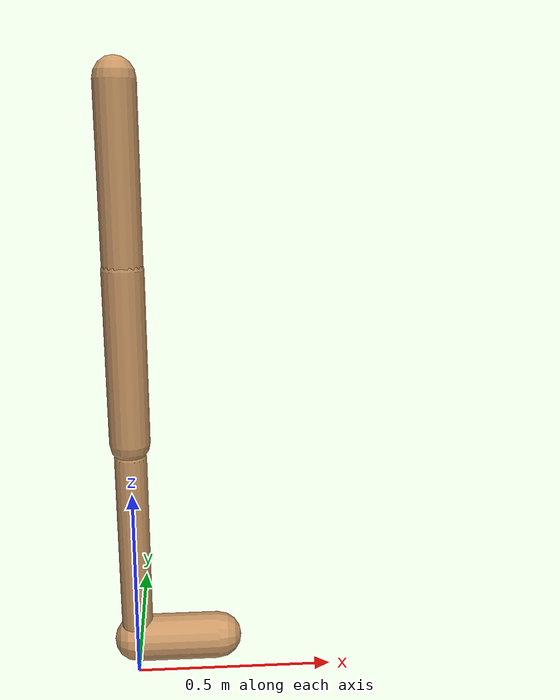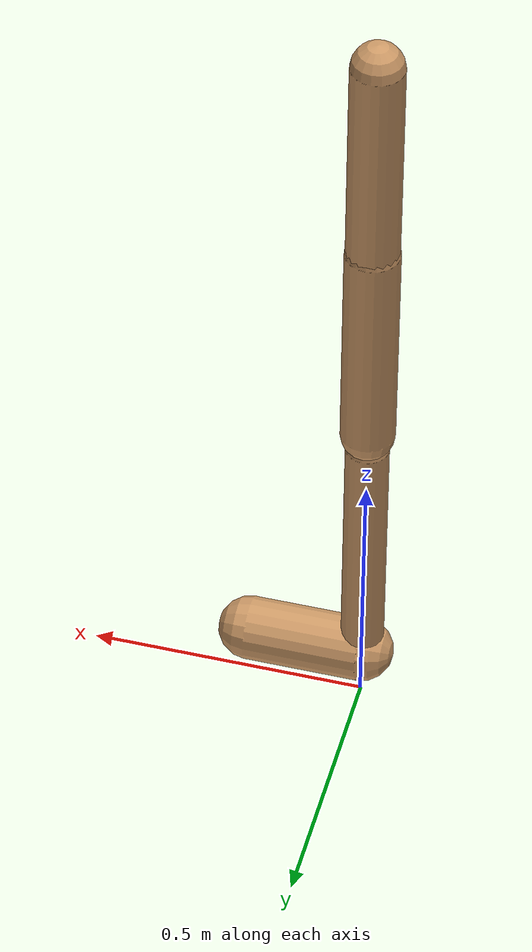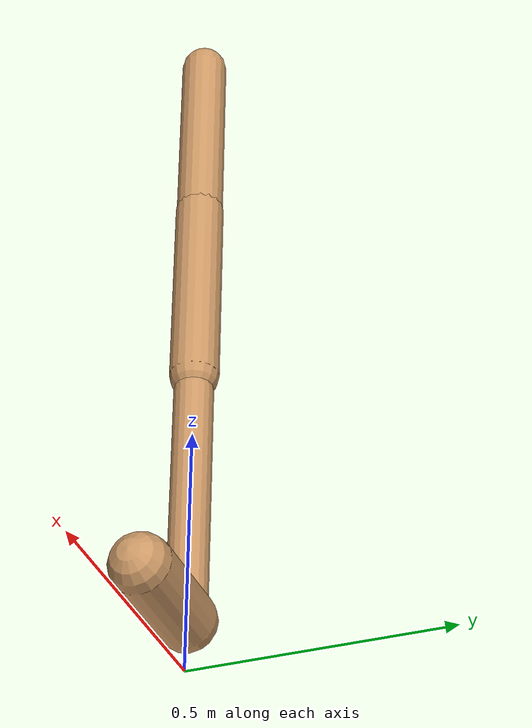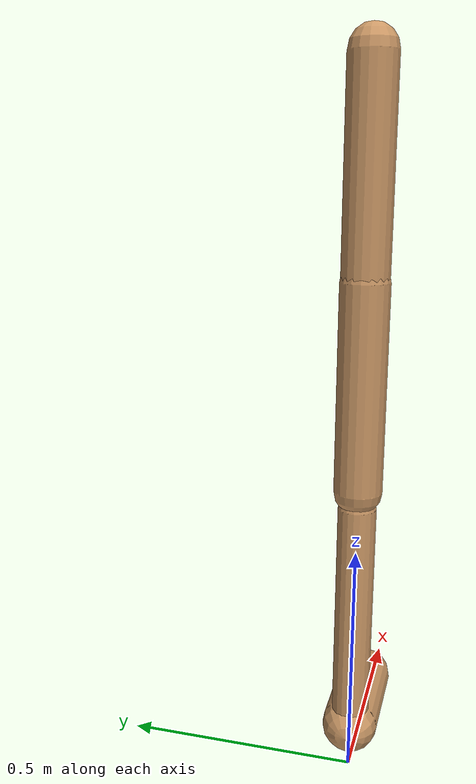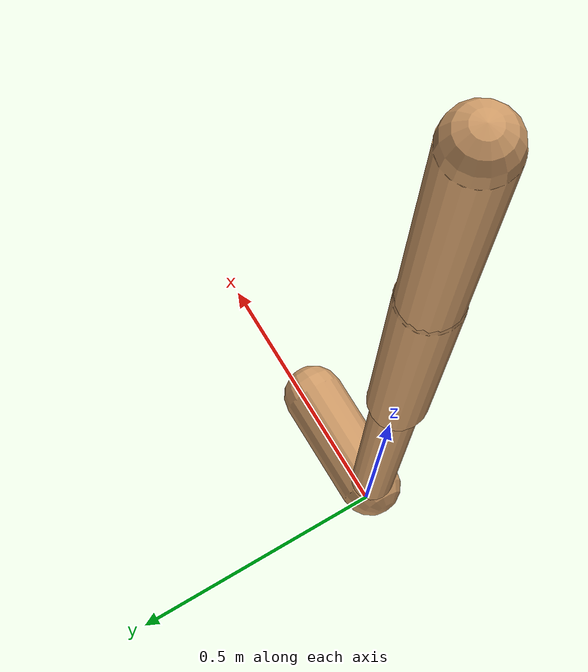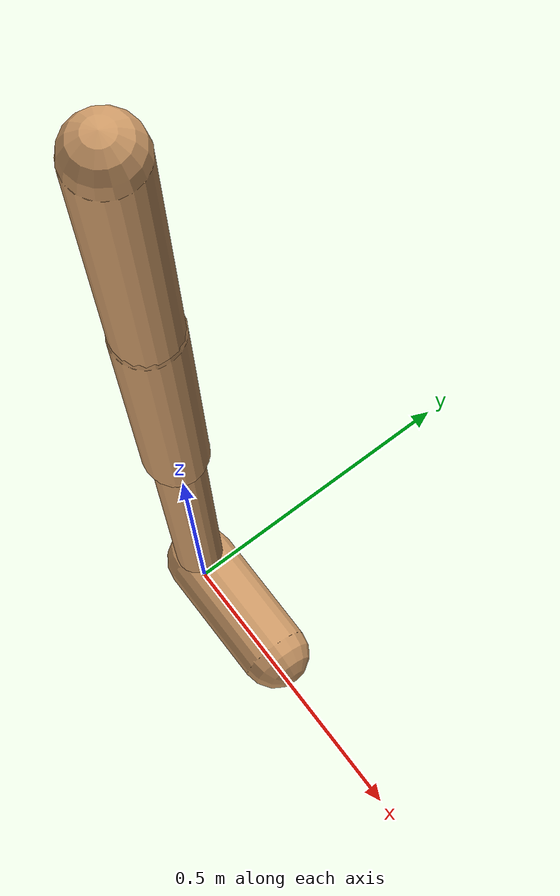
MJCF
<mujoco model="walker2d">
  <compiler angle="degree" coordinate="global" inertiafromgeom="true" />
  <default>
    <joint armature="0.01" damping=".1" limited="true" />
    <geom conaffinity="0" condim="3" contype="1" density="1000" friction="0.8 .1 .1" rgba="0.8 0.6 .4 1" />
  </default>
  <option integrator="RK4" timestep="0.002" />
  <worldbody>

    <body name="torso" pos="0 0 -0.07579554160515692">
      <joint armature="0" axis="1 0 0" damping="0" limited="false" name="ignorex" pos="0 0 0" stiffness="0" type="slide" />
      <joint armature="0" axis="0 0 1" damping="0" limited="false" name="ignorez" pos="0 0 0" ref="1.25" stiffness="0" type="slide" />
      <joint armature="0" axis="0 1 0" damping="0" limited="false" name="ignorey" pos="0 0 0" stiffness="0" type="hinge" />
      <geom fromto="0 0 1.45 0 0 1.05" name="torso_geom" size="0.046964557210261" type="capsule" />
      <body name="thigh">
        <joint axis="0 -1 0" name="thigh_joint" pos="0 0 1.05" range="-150 0" type="hinge" />
        <geom fromto="0.0 0.0 1.05 0.0 0.0 0.6359031512866533" name="thigh_geom" size="0.048698942280395556" type="capsule" />
        <body name="leg" pos="0.0 0.0 0.035903151286653334">
          <joint axis="0 -1 0" name="leg_joint" pos="0 0 0.6" range="-150 0" type="hinge" />
          <geom fromto="0.0 0.0 0.6 0.0 0.0 0.13989239031850365" name="leg_geom" size="0.038959153824316445" type="capsule" />
          <body name="foot" pos="0.0 0.0 0.03989239031850364">
            <joint axis="0 -1 0" name="foot_joint" pos="0 0 0.1" range="-45 45" type="hinge" />
            <geom fromto="-0.0 0.0 0.1 0.20773756836935908 0.0 0.1" name="foot_geom" size="0.05808032194347989" type="capsule" />
          </body>
        </body>
      </body>

      <body name="thigh_left">
        <joint axis="0 -1 0" name="thigh_left_joint" pos="0 0 1.05" range="-150 0" type="hinge" />
        <geom fromto="0.0 0.0 1.05 0.0 0.0 0.6359031512866533" name="thigh_left_geom" rgba=".7 .3 .6 1" size="0.048698942280395556" type="capsule" />
        <body name="leg_left" pos="0.0 0.0 0.035903151286653334">
          <joint axis="0 -1 0" name="leg_left_joint" pos="0 0 0.6" range="-150 0" type="hinge" />
          <geom fromto="0.0 0.0 0.6 0.0 0.0 0.13989239031850365" name="leg_left_geom" rgba=".7 .3 .6 1" size="0.038959153824316445" type="capsule" />
          <body name="foot_left" pos="0.0 0.0 0.03989239031850364">
            <joint axis="0 -1 0" name="foot_left_joint" pos="0 0 0.1" range="-45 45" type="hinge" />
            <geom fromto="-0.0 0.0 0.1 0.20773756836935908 0.0 0.1" name="foot_left_geom" rgba=".7 .3 .6 1" size="0.05808032194347989" type="capsule" />
          </body>
        </body>
      </body>
    </body>
  </worldbody>
  <actuator>

    <motor ctrllimited="true" ctrlrange="-1.0 1.0" gear="100" joint="thigh_joint" />
    <motor ctrllimited="true" ctrlrange="-1.0 1.0" gear="100" joint="leg_joint" />
    <motor ctrllimited="true" ctrlrange="-1.0 1.0" gear="100" joint="foot_joint" />
    <motor ctrllimited="true" ctrlrange="-1.0 1.0" gear="100" joint="thigh_left_joint" />
    <motor ctrllimited="true" ctrlrange="-1.0 1.0" gear="100" joint="leg_left_joint" />
    <motor ctrllimited="true" ctrlrange="-1.0 1.0" gear="100" joint="foot_left_joint" />

  </actuator>
</mujoco>
